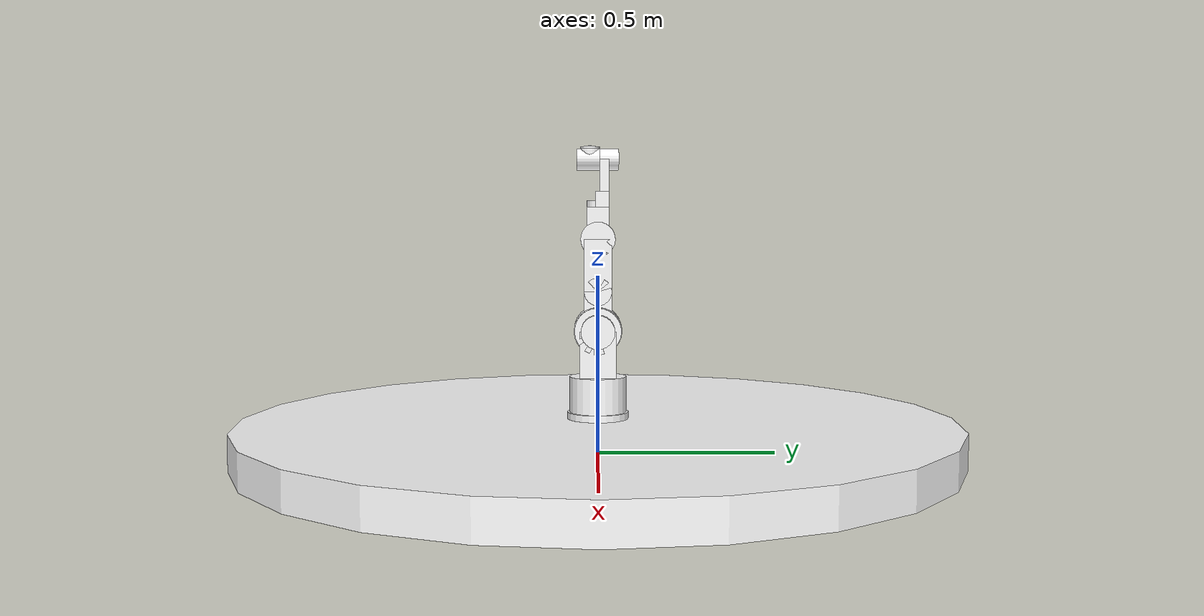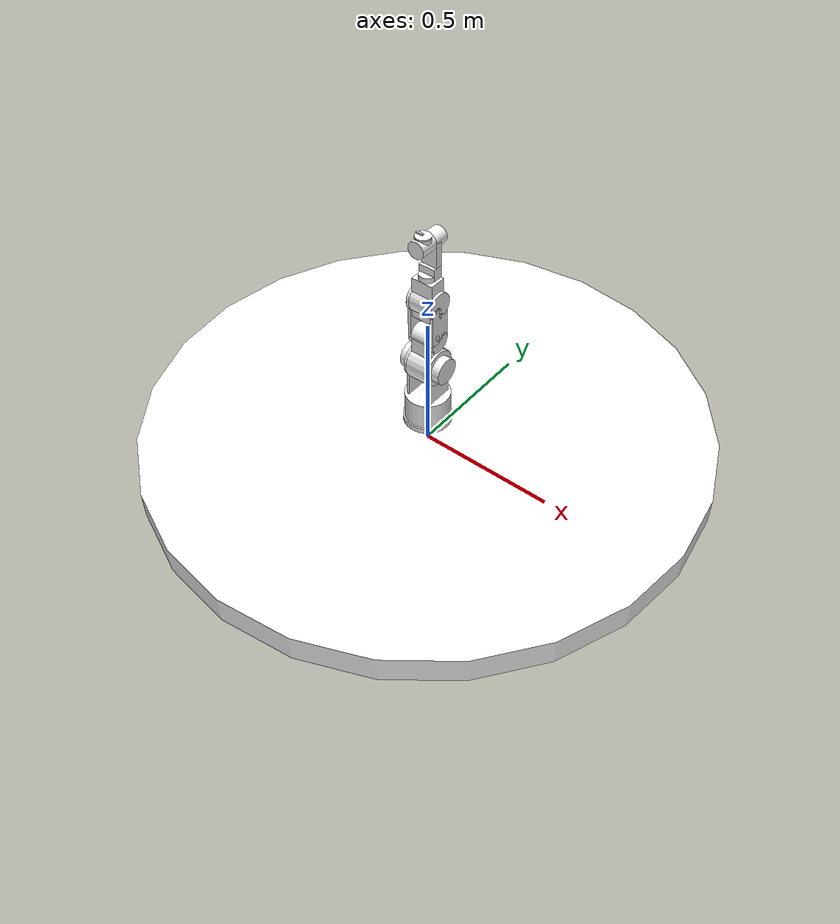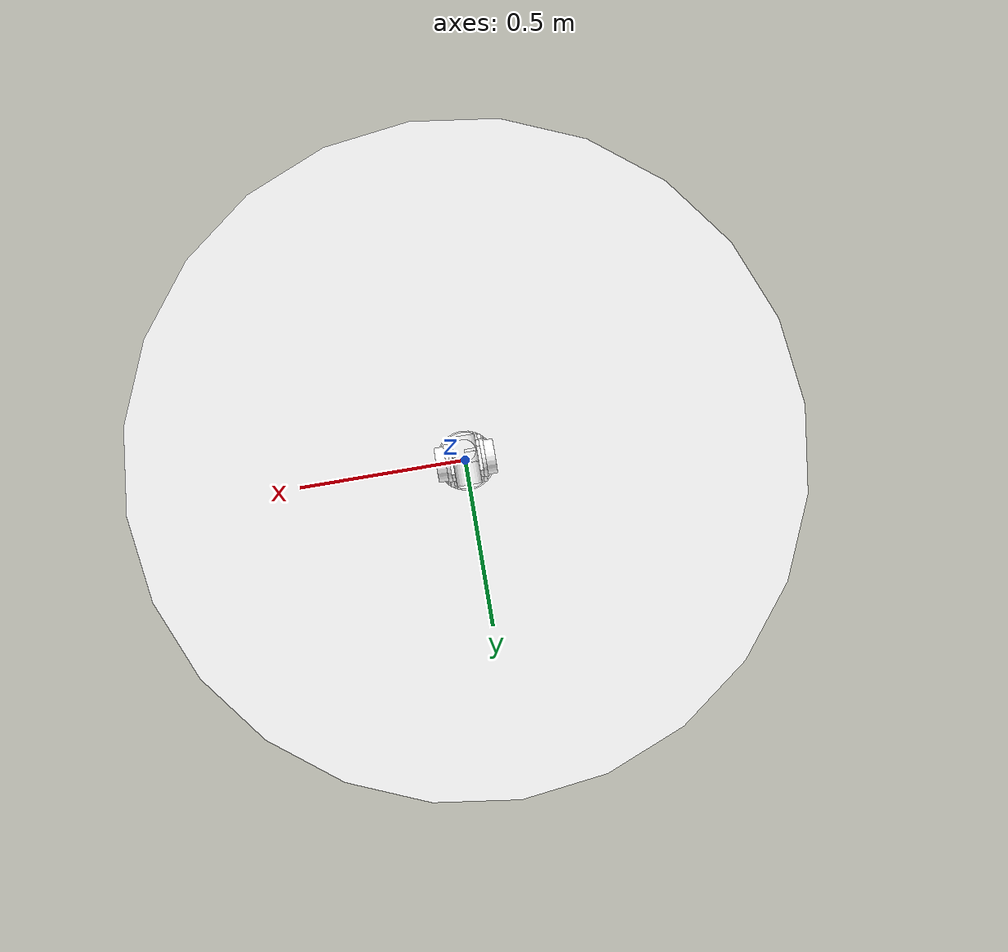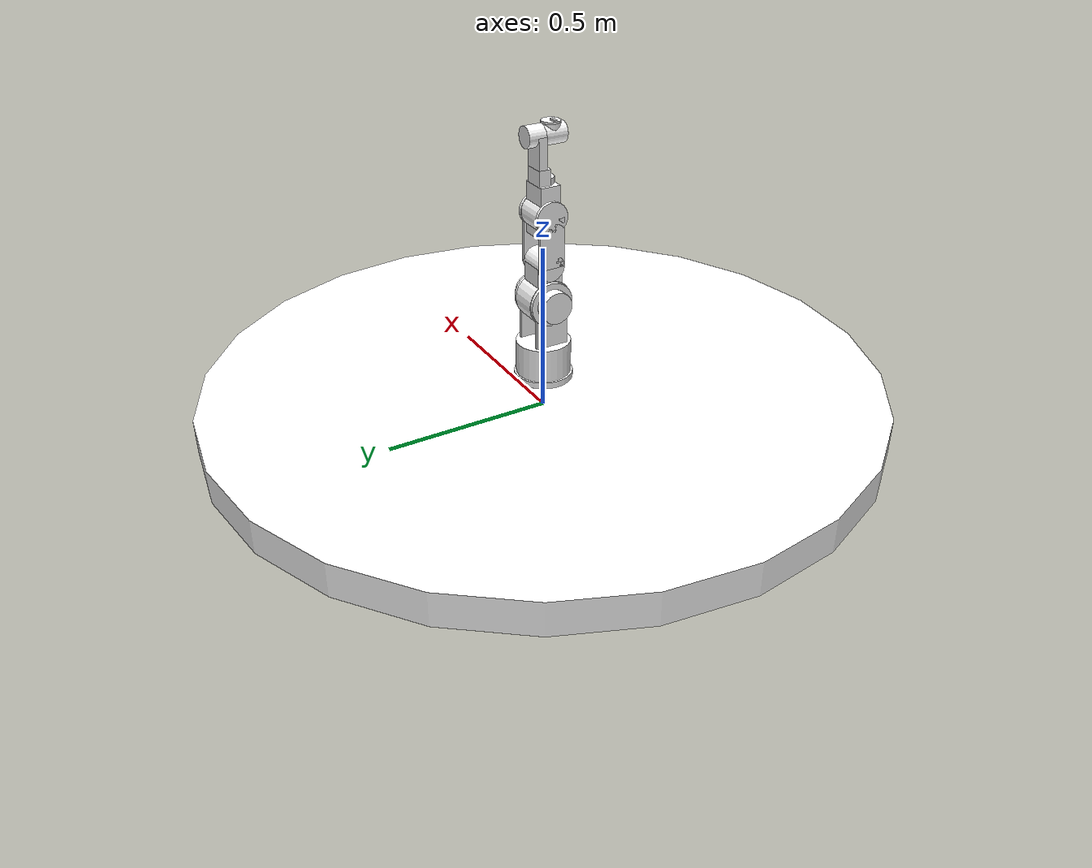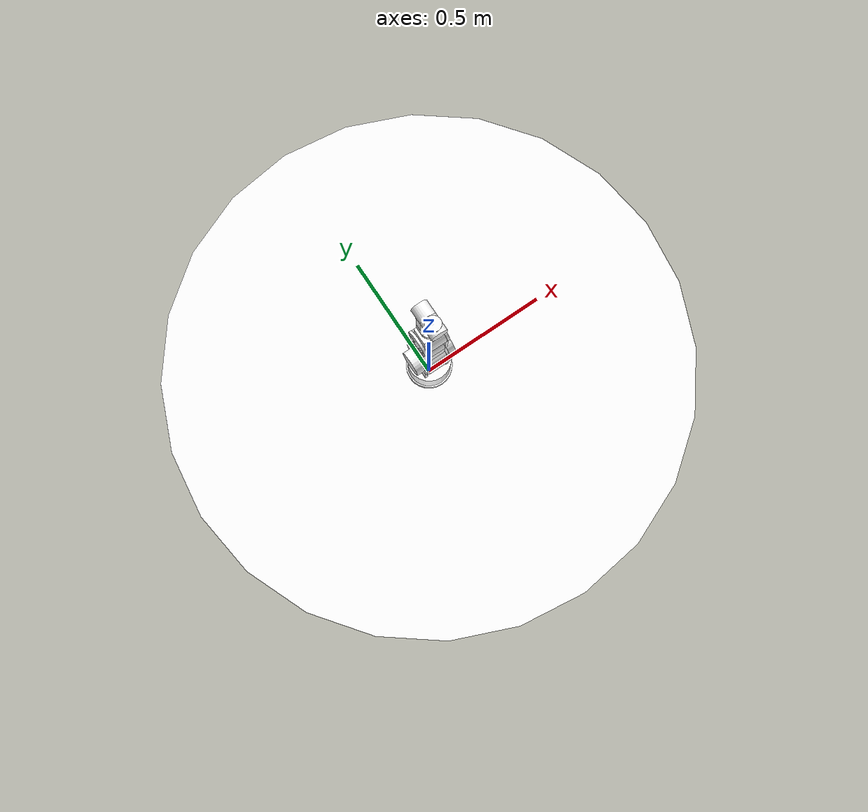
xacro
<?xml version="1.0"?>
<robot xmlns:xacro="http://www.ros.org/wiki/xacro" name="andreas_arm">

    <!--note that the origin of each part is in reference to the joint it is attached to -->
    <!--xacro:property name="pi"                value="3.141592" /-->

    <xacro:property name="baseRadius"          value="1.00" />
    <xacro:property name="baseZ"               value=".100" />

    <xacro:property name="alphaRadius0"        value=".086" />
    <xacro:property name="alphaZ0"             value=".019" />
    <xacro:property name="alphaRadius1"        value=".080" />
    <xacro:property name="alphaZ1"             value=".100" />
    <xacro:property name="alphaJointX"         value=".010" />
    <xacro:property name="alphaJointBlockY"    value=".100" />
    <xacro:property name="alphaJointBlockZ"    value=".130" />
    <xacro:property name="alphaJointSpaceX"    value=".080" />
    <xacro:property name="alphaJointRadius"    value=".065" />
    <xacro:property name="alphaMotorRadius"    value=".047" />
    <xacro:property name="alphaMotorX"         value=".030" />

    <xacro:property name="betaJointRadius0"    value=".067" />
    <xacro:property name="betaJointX0"         value=".080" />
    <xacro:property name="betaShaftY"          value=".077" />
    <xacro:property name="betaShaftX0"         value=".074" />
    <xacro:property name="betaShaftZ0"         value=".110" />
    <xacro:property name="betaShaftSpacing1"   value=".080" />
    <xacro:property name="betaShaftX1"         value=".010" />
    <xacro:property name="betaShaftZ1"         value=".145" />
    <xacro:property name="betaShaftRadius1"    value=".048" />

    <xacro:property name="gammaX"              value=".080" />
    <xacro:property name="gammaShaftY"         value=".060" />
    <xacro:property name="gammaShaftZ0"        value=".061" />
    <xacro:property name="gammaShaftZ1"        value=".088" />
    <xacro:property name="gammaJointRadius"    value=".047" />

    <xacro:property name="deltaJointRadius0"   value=".030" />
    <xacro:property name="deltaJointZ0"        value=".019" />
    <xacro:property name="deltaShaftX"         value=".060" />
    <xacro:property name="deltaShaftY0"        value=".037" />
    <xacro:property name="deltaShaftZ0"        value=".045" />
    <xacro:property name="deltaShaftOffset"    value=".012" />
    <xacro:property name="deltaShaftY1"        value=".025" />
    <xacro:property name="deltaShaftZ1"        value=".088" />
    <xacro:property name="deltaJointRadius1"   value=".030" />
    <xacro:property name="deltaJointY1"        value=".052" />

    <xacro:property name="epsilonJointX0"      value=".065" />
    <xacro:property name="epsilonJointRadius0" value=".030" />
    <xacro:property name="epsilonJointOffset1" value=".002" />
    <xacro:property name="epsilonJointZ1"      value=".030" />
    <xacro:property name="epsilonJointRadius1" value=".027" />

    <xacro:property name="zetaJointRadius"     value=".027" />
    <xacro:property name="zetaJointZ"          value=".005" />

    <xacro:property name="endEffectorZ"        value=".010" />

    <material name="brown">
        <color rgba="${255/255} ${185/255} ${  0/255} ${255/255}" />
    </material>

    <material name="red">
        <color rgba="${255/255} ${  0/255} ${  0/255} ${255/255}" />
    </material>

    <material name="white">
        <color rgba="${255/255} ${255/255} ${255/255} ${255/255}" />
    </material>

    <xacro:macro name="defaultInertial" params="mass">
        <inertial>
            <mass value="${mass}" />
            <inertia
                ixx="1.0"
                ixy="0.0"
                ixz="0.0"
                iyy="1.0"
                iyz="0.0"
                izz="1.0" />
        </inertial>
    </xacro:macro>

    <xacro:macro name="cylinderTemplate" params="length radius roll pitch yaw ox oy oz color">
        <visual>
            <geometry>
                <cylinder length="${length}" radius="${radius}" />
            </geometry>
            <origin rpy="${roll} ${pitch} ${yaw}" xyz="${ox} ${oy} ${oz}" />
            <material name="${color}" />
        </visual>
        <collision>
            <geometry>
                <cylinder length="${length}" radius="${radius}" />
            </geometry>
            <origin rpy="${roll} ${pitch} ${yaw}" xyz="${ox} ${oy} ${oz}" />
            <material name="${color}" />
        </collision>
    </xacro:macro>

    <xacro:macro name="boxTemplate" params="x y z roll pitch yaw ox oy oz color">
        <visual>
            <geometry>
                <box size="${x} ${y} ${z}" />
            </geometry>
            <origin rpy="${roll} ${pitch} ${yaw}" xyz="${ox} ${oy} ${oz}" />
            <material name="${color}" />
        </visual>
        <collision>
            <geometry>
                <box size="${x} ${y} ${z}" />
            </geometry>
            <origin rpy="${roll} ${pitch} ${yaw}" xyz="${ox} ${oy} ${oz}" />
            <material name="${color}" />
        </collision>
    </xacro:macro>

    <link name="world" />

    <link name="base_link">
        <xacro:cylinderTemplate
	    length="${baseZ}"
	    radius="${baseRadius}"
	    roll="0"
	    pitch="0"
	    yaw="0"
	    ox="0"
	    oy="0"
	    oz="${baseZ / 2}"
	    color="white" />

        <xacro:defaultInertial mass="1000" />
    </link>

    <link name="alpha_link">
        <!-- Shaft -->
        <xacro:cylinderTemplate
	    length="${alphaZ0}"
	    radius="${alphaRadius0}"
	    roll="0"
	    pitch="0"
	    yaw="0"
	    ox="0"
	    oy="0"
	    oz="${alphaZ0 / 2}"
	    color="white" />

        <xacro:cylinderTemplate
	    length="${alphaZ1}"
	    radius="${alphaRadius1}"
	    roll="0"
	    pitch="0"
	    yaw="0"
	    ox="0"
	    oy="0"
	    oz="${alphaZ0 + alphaZ1 / 2}"
	    color="white" />

        <!-- joint Hinge -->
        <xacro:boxTemplate x="${alphaJointX}" y="${alphaJointBlockY}" z="${alphaJointBlockZ}"
            roll="0" pitch="0" yaw="0" ox="${alphaJointSpaceX / 2 + alphaJointX / 2}" oy="0" oz="${alphaZ0 + alphaZ1 + alphaJointBlockZ / 2}" color="white" />

        <xacro:boxTemplate x="${alphaJointX}" y="${alphaJointBlockY}" z="${alphaJointBlockZ}"
            roll="0" pitch="0" yaw="0" ox="-${alphaJointSpaceX / 2 + alphaJointX / 2}" oy="0" oz="${alphaZ0 + alphaZ1 + alphaJointBlockZ / 2}" color="white" />

        <xacro:cylinderTemplate length="${alphaJointX}" radius="${alphaJointRadius}"
            roll="0" pitch="${pi / 2}" yaw="0" ox="${alphaJointSpaceX / 2 + alphaJointX / 2}" oy="0" oz="${alphaZ0 + alphaZ1 + alphaJointBlockZ}" color="white" />

        <xacro:cylinderTemplate length="${alphaJointX}" radius="${alphaJointRadius}"
            roll="0" pitch="${pi / 2}" yaw="0" ox="-${alphaJointSpaceX / 2 + alphaJointX / 2}" oy="0" oz="${alphaZ0 + alphaZ1 + alphaJointBlockZ}" color="white" />

        <!-- Motor Cover -->
        <xacro:cylinderTemplate length="${alphaMotorX}" radius="${alphaMotorRadius}"
            roll="0" pitch="${pi / 2}" yaw="0" ox="${alphaJointSpaceX / 2 + alphaJointX + alphaMotorX / 2}" oy="0" oz="${alphaZ0 + alphaZ1 + alphaJointBlockZ}" color="white" />

        <xacro:cylinderTemplate length="${alphaMotorX}" radius="${alphaMotorRadius}"
            roll="0" pitch="${pi / 2}" yaw="0" ox="-${alphaJointSpaceX / 2 + alphaJointX + alphaMotorX / 2}" oy="0" oz="${alphaZ0 + alphaZ1 + alphaJointBlockZ}" color="white" />

        <xacro:defaultInertial mass="1" />
    </link>

    <link name="beta_link">
        <!-- Joint hinge -->
        <xacro:cylinderTemplate length="${betaJointX0}" radius="${betaJointRadius0}" roll="0" pitch="${pi / 2}" yaw="0" ox="0" oy="0" oz="0" color="white" />

        <!-- shaft -->
        <xacro:boxTemplate x="${betaShaftX0}" y="${betaShaftY}" z="${betaShaftZ0}"
            roll="0" pitch="0" yaw="0" ox="0" oy="0" oz="${betaShaftZ0 / 2}" color="white" />

        <xacro:cylinderTemplate length="${betaShaftSpacing1 + betaShaftX1 * 2}" radius="${betaShaftY / 2}"
            roll="0" pitch="${pi / 2}" yaw="0" ox="0" oy="0" oz="${betaShaftZ0}" color="white" />

        <xacro:boxTemplate x="${betaShaftX1}" y="${betaShaftY}" z="${betaShaftZ1}"
            roll="0" pitch="0" yaw="0" ox="${betaShaftSpacing1 / 2 + betaShaftX1 / 2}" oy="0" oz="${betaShaftZ0 + betaShaftZ1 / 2}" color="white" />

        <xacro:boxTemplate x="${betaShaftX1}" y="${betaShaftY}" z="${betaShaftZ1}"
            roll="0" pitch="0" yaw="0" ox="-${betaShaftSpacing1 / 2 + betaShaftX1 / 2}" oy="0" oz="${betaShaftZ0 + betaShaftZ1 / 2}" color="white" />

        <!-- Joint hinge -->
        <xacro:cylinderTemplate length="${betaShaftX1}" radius="${betaShaftRadius1}"
            roll="0" pitch="${pi / 2}" yaw="0" ox="${betaShaftSpacing1 / 2 + betaShaftX1 / 2}" oy="0" oz="${betaShaftZ0 + betaShaftZ1}" color="white" />

        <xacro:cylinderTemplate length="${betaShaftX1}" radius="${betaShaftRadius1}"
            roll="0" pitch="${pi / 2}" yaw="0" ox="-${betaShaftSpacing1 / 2 + betaShaftX1 / 2}" oy="0" oz="${betaShaftZ0 + betaShaftZ1}" color="white" />

        <xacro:defaultInertial mass="1" />
    </link>

    <link name="gamma_link">
        <!-- Shaft -->
        <xacro:boxTemplate x="${gammaX}" y="${gammaShaftY}" z="${gammaShaftZ0}"
            roll="0" pitch="0" yaw="0" ox="0" oy="0" oz="-${gammaShaftZ0 / 2}" color="white" />

        <xacro:boxTemplate x="${gammaX}" y="${gammaShaftY}" z="${gammaShaftZ1}"
            roll="0" pitch="0" yaw="0" ox="0" oy="0" oz="${gammaShaftZ1 / 2}" color="white" />

        <!-- Joint -->
        <xacro:cylinderTemplate length="${gammaX}" radius="${gammaJointRadius}"
            roll="0" pitch="${pi / 2}" yaw="0" ox="0" oy="0" oz="0" color="white" />

        <xacro:defaultInertial mass="1" />
    </link>

    <link name="delta_link">
        <!-- Joint 0 -->
        <xacro:cylinderTemplate length="${deltaJointZ0}" radius="${deltaJointRadius0}"
            roll="0" pitch="0" yaw="0" ox="0" oy="0" oz="${deltaJointZ0 / 2}" color="white" />

        <!-- Shaft -->
        <xacro:boxTemplate x="${deltaShaftX}" y="${deltaShaftY0}" z="${deltaShaftZ0}"
            roll="0" pitch="0" yaw="0" ox="0" oy="${deltaShaftOffset}" oz="${deltaShaftZ0 / 2}" color="white" />

        <xacro:boxTemplate x="${deltaShaftX}" y="${deltaShaftY1}" z="${deltaShaftZ1}"
            roll="0" pitch="0" yaw="0" ox="0" oy="${deltaShaftOffset + (deltaShaftY0 - deltaShaftY1) / 2}" oz="${deltaShaftZ0 + deltaShaftZ1 / 2}" color="white" />

        <!-- Joint 1 -->
        <xacro:cylinderTemplate length="${deltaJointY1}" radius="${deltaJointRadius1}"
            roll="${pi / 2}" pitch="0" yaw="0" ox="0" oy="${deltaShaftOffset + (deltaShaftY0 - deltaShaftY1) / 2 + (deltaJointY1 - deltaShaftY1) / 2}" oz="${deltaShaftZ0 + deltaShaftZ1}" color="white" />

        <xacro:defaultInertial mass="1" />
    </link>

    <link name="epsilon_link">
        <xacro:cylinderTemplate length="${epsilonJointX0}" radius="${epsilonJointRadius0}"
            roll="${pi / 2}" pitch="0" yaw="0" ox="0" oy="${epsilonJointX0 / 2}" oz="0" color="white" />

        <xacro:cylinderTemplate length="${epsilonJointZ1}" radius="${epsilonJointRadius1}"
            roll="0" pitch="0" yaw="0" ox="0" oy="${epsilonJointRadius1 + epsilonJointOffset1}" oz="${epsilonJointZ1 / 2}" color="white" />

        <xacro:defaultInertial mass="1" />
    </link>

    <link name="zeta_link">
        <!-- Joint -->
        <xacro:cylinderTemplate length="${zetaJointZ}" radius="${zetaJointRadius}"
            roll="0" pitch="0" yaw="0" ox="0" oy="0" oz="${zetaJointZ / 2}" color="white" />

        <!-- Marker -->
        <xacro:boxTemplate x="${zetaJointRadius}" y="${zetaJointRadius / 4}" z="${zetaJointZ}"
            roll="0" pitch="0" yaw="0" ox="${zetaJointRadius / 2}" oy="0" oz="${zetaJointZ * 3 / 2}" color="white" />

        <xacro:defaultInertial mass="1" />
    </link>

    <link name="end_effector">
        <xacro:boxTemplate x="${zetaJointRadius / 4}" y="${zetaJointRadius / 4}" z="${endEffectorZ}"
            roll="0" pitch="0" yaw="0" ox="${zetaJointRadius * 3 / 4}" oy="0" oz="${zetaJointZ}" color="white" />

        <xacro:defaultInertial mass="1" />
    </link>

    <joint name="world_joint" type="fixed">
        <parent link="world" />
        <child link="base_link" />
    </joint>

    <transmission name="alphaTransmission">
        <type>transmission_interface/SimpleTransmission</type>
        <joint name="alpha_joint" type="SimpleTransmission">
            <hardwareInterface>EffortJointInterface</hardwareInterface>
        </joint>
        <actuator name="alpha_motor">
            <machanicalReduction>1</machanicalReduction>
            <hardwareInterface>EffortJointInterface</hardwareInterface>
        </actuator>
    </transmission>

    <joint name="alpha_joint" type="revolute">
        <parent link="base_link" />
        <child  link="alpha_link" />
        <axis   xyz="0 0 1" />
        <limit  effort="1000.0" lower="0" upper="6.28" velocity="0.5" />
        <origin rpy="0 0 0" xyz="0 0 ${baseZ}" />
    </joint>

    <transmission name="betaTransmission">
        <type>transmission_interface/SimpleTransmission</type>
        <joint name="beta_joint" type="SimpleTransmission">
            <hardwareInterface>EffortJointInterface</hardwareInterface>
        </joint>
        <actuator name="beta_motor">
            <machanicalReduction>1</machanicalReduction>
            <hardwareInterface>EffortJointInterface</hardwareInterface>
        </actuator>
    </transmission>

    <joint name="beta_joint" type="revolute">
        <parent link="alpha_link" />
        <child  link="beta_link" />
        <axis   xyz="1 0 0" />
        <limit  effort="1000.00" lower="-2.36" upper="2.36" velocity="0.5" />
        <origin rpy="0 0 0" xyz="0 0 ${alphaZ0 + alphaZ1 + alphaJointBlockZ}" />
    </joint>

    <transmission name="gammaTransmission">
        <type>transmission_interface/SimpleTransmission</type>
        <joint name="gamma_joint" type="SimpleTransmission">
            <hardwareInterface>EffortJointInterface</hardwareInterface>
        </joint>
        <actuator name="gamma_motor">
            <machanicalReduction>1</machanicalReduction>
            <hardwareInterface>EffortJointInterface</hardwareInterface>
        </actuator>
    </transmission>

    <joint name="gamma_joint" type="revolute">
        <parent link="beta_link" />
        <child  link="gamma_link" />
        <axis   xyz="1 0 0" />
        <limit  effort="1000.00" lower="-2.36" upper="2.36" velocity="0.5" />
        <origin rpy="0 0 0" xyz="0 0 ${betaShaftZ0 + betaShaftZ1}" />
    </joint>

    <transmission name="deltaTransmission">
        <type>transmission_interface/SimpleTransmission</type>
        <joint name="delta_joint" type="SimpleTransmission">
            <hardwareInterface>EffortJointInterface</hardwareInterface>
        </joint>
        <actuator name="delta_motor">
            <machanicalReduction>1</machanicalReduction>
            <hardwareInterface>EffortJointInterface</hardwareInterface>
        </actuator>
    </transmission>

    <joint name="delta_joint" type="revolute">
        <parent link="gamma_link" />
        <child  link="delta_link" />
        <axis   xyz="0 0 1" />
        <limit  effort="1000.00" lower="-2.36" upper="2.36" velocity="0.5" />
        <origin rpy="0 0 0" xyz="0 0 ${gammaShaftZ1}" />
    </joint>

    <transmission name="epsilonTransmission">
        <type>transmission_interface/SimpleTransmission</type>
        <joint name="epsilon_joint" type="SimpleTransmission">
            <hardwareInterface>EffortJointInterface</hardwareInterface>
        </joint>
        <actuator name="epsilon_motor">
            <machanicalReduction>1</machanicalReduction>
            <hardwareInterface>EffortJointInterface</hardwareInterface>
        </actuator>
    </transmission>

    <joint name="epsilon_joint" type="revolute">
        <parent link="delta_link" />
        <child  link="epsilon_link" />
        <axis   xyz="0 1 0" />
        <limit  effort="1000.00" lower="-2.36" upper="2.36" velocity="0.5" />
        <origin rpy="0 0 ${pi}" xyz="0 ${deltaShaftOffset + (deltaShaftY0 - deltaShaftY1) / 2 + (deltaJointY1 - deltaShaftY1) / 2 - deltaShaftY1} ${deltaShaftZ0 + deltaShaftZ1}" />
    </joint>

    <transmission name="zetaTransmission">
        <type>transmission_interface/SimpleTransmission</type>
        <joint name="zeta_joint" type="SimpleTransmission">
            <hardwareInterface>EffortJointInterface</hardwareInterface>
        </joint>
        <actuator name="zeta_motor">
            <machanicalReduction>1</machanicalReduction>
            <hardwareInterface>EffortJointInterface</hardwareInterface>
        </actuator>
    </transmission>

    <joint name="zeta_joint" type="revolute">
        <parent link="epsilon_link" />
        <child  link="zeta_link" />
        <axis   xyz="0 0 1" />
        <limit  effort="1000.00" lower="-2.36" upper="2.36" velocity="0.5" />
        <origin rpy="0 0 0" xyz="0 ${epsilonJointRadius1 + epsilonJointOffset1} ${epsilonJointZ1}" />
    </joint>

    <joint name="end_effector_joint" type="fixed">
        <parent link="zeta_link" />
        <child link="end_effector" />
    </joint>

    <!-- Gazebo plugin for ROS Control -->
    <gazebo>
        <plugin name="gazebo_ros_control" filename="libgazebo_ros_control.so">
            <robotNamespace>/andreas_arm</robotNamespace>
        </plugin>
    </gazebo>

</robot>
